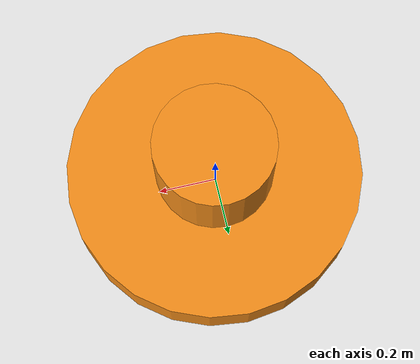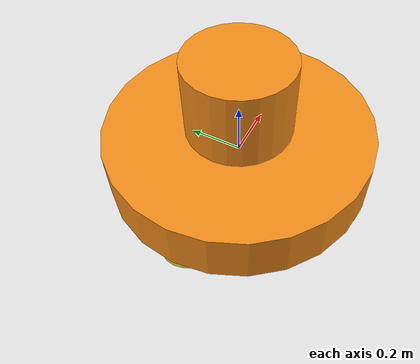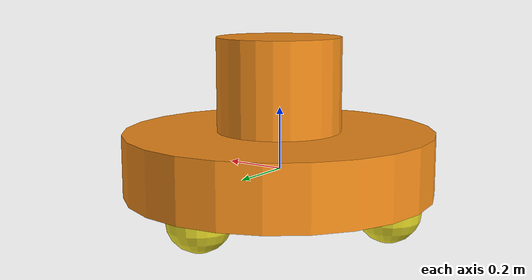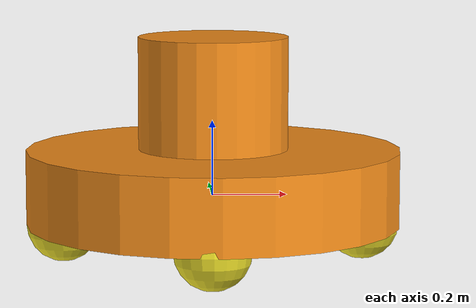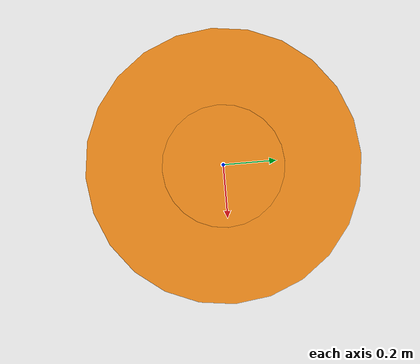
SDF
<?xml version='1.0'?>
<sdf version='1.6'>
  <model name='my_caster'>
    <link name='link_0'>
      <pose frame=''>0.003333 -0 0.025 0 -0 0</pose>
      <inertial>
        <mass>1</mass>
        <inertia>
          <ixx>0.145833</ixx>
          <ixy>0</ixy>
          <ixz>0</ixz>
          <iyy>0.145833</iyy>
          <iyz>0</iyz>
          <izz>0.125</izz>
        </inertia>
        <pose frame=''>0 0 0 0 -0 0</pose>
      </inertial>
      <gravity>1</gravity>
      <self_collide>0</self_collide>
      <kinematic>0</kinematic>
      <visual name='visual'>
        <pose frame=''>0 0 0 0 -0 0</pose>
        <geometry>
          <cylinder>
            <radius>0.5</radius>
            <length>0.2</length>
          </cylinder>
        </geometry>
        <material>
          <lighting>1</lighting>
          <script>
            <uri>file://media/materials/scripts/gazebo.material</uri>
            <name>Gazebo/Orange</name>
          </script>
          <shader type='pixel'>
            <normal_map>__default__</normal_map>
          </shader>
          <ambient>1 0.5088 0.0468 1</ambient>
          <diffuse>1 0.5088 0.0468 1</diffuse>
          <specular>0.5 0.5 0.5 128</specular>
          <emissive>0 0 0 1</emissive>
        </material>
        <transparency>0</transparency>
        <cast_shadows>1</cast_shadows>
      </visual>
      <collision name='collision'>
        <laser_retro>0</laser_retro>
        <max_contacts>10</max_contacts>
        <pose frame=''>0 0 0 0 -0 0</pose>
        <geometry>
          <cylinder>
            <radius>0.5</radius>
            <length>0.2</length>
          </cylinder>
        </geometry>
        <surface>
          <friction>
            <ode>
              <mu>1</mu>
              <mu2>1</mu2>
              <fdir1>0 0 0</fdir1>
              <slip1>0</slip1>
              <slip2>0</slip2>
            </ode>
            <torsional>
              <coefficient>1</coefficient>
              <patch_radius>0</patch_radius>
              <surface_radius>0</surface_radius>
              <use_patch_radius>1</use_patch_radius>
              <ode>
                <slip>0</slip>
              </ode>
            </torsional>
          </friction>
          <bounce>
            <restitution_coefficient>0</restitution_coefficient>
            <threshold>1e+06</threshold>
          </bounce>
          <contact>
            <collide_without_contact>0</collide_without_contact>
            <collide_without_contact_bitmask>1</collide_without_contact_bitmask>
            <collide_bitmask>1</collide_bitmask>
            <ode>
              <soft_cfm>0</soft_cfm>
              <soft_erp>0.2</soft_erp>
              <kp>1e+13</kp>
              <kd>1</kd>
              <max_vel>0.01</max_vel>
              <min_depth>0</min_depth>
            </ode>
            <bullet>
              <split_impulse>1</split_impulse>
              <split_impulse_penetration_threshold>-0.01</split_impulse_penetration_threshold>
              <soft_cfm>0</soft_cfm>
              <soft_erp>0.2</soft_erp>
              <kp>1e+13</kp>
              <kd>1</kd>
            </bullet>
          </contact>
        </surface>
      </collision>
    </link>
    <link name='link_1'>
      <pose frame=''>-0.016667 -0.4 -0.075 0 -0 0</pose>
      <inertial>
        <mass>1</mass>
        <inertia>
          <ixx>0.1</ixx>
          <ixy>0</ixy>
          <ixz>0</ixz>
          <iyy>0.1</iyy>
          <iyz>0</iyz>
          <izz>0.1</izz>
        </inertia>
        <pose frame=''>0 0 0 0 -0 0</pose>
      </inertial>
      <gravity>1</gravity>
      <self_collide>0</self_collide>
      <kinematic>0</kinematic>
      <visual name='visual'>
        <pose frame=''>0 0 0 0 -0 0</pose>
        <geometry>
          <sphere>
            <radius>0.1</radius>
          </sphere>
        </geometry>
        <material>
          <lighting>1</lighting>
          <script>
            <uri>file://media/materials/scripts/gazebo.material</uri>
            <name>Gazebo/Yellow</name>
          </script>
          <shader type='pixel'>
            <normal_map>__default__</normal_map>
          </shader>
          <ambient>1 1 0 1</ambient>
          <diffuse>1 1 0 1</diffuse>
          <specular>0 0 0 0 0</specular>
          <emissive>0 0 0 1</emissive>
        </material>
        <transparency>0</transparency>
        <cast_shadows>1</cast_shadows>
      </visual>
      <collision name='collision'>
        <laser_retro>0</laser_retro>
        <max_contacts>10</max_contacts>
        <pose frame=''>0 0 0 0 -0 0</pose>
        <geometry>
          <sphere>
            <radius>0.1</radius>
          </sphere>
        </geometry>
        <surface>
          <friction>
            <ode>
              <mu>1</mu>
              <mu2>1</mu2>
              <fdir1>0 0 0</fdir1>
              <slip1>0</slip1>
              <slip2>0</slip2>
            </ode>
            <torsional>
              <coefficient>1</coefficient>
              <patch_radius>0</patch_radius>
              <surface_radius>0</surface_radius>
              <use_patch_radius>1</use_patch_radius>
              <ode>
                <slip>0</slip>
              </ode>
            </torsional>
          </friction>
          <bounce>
            <restitution_coefficient>0</restitution_coefficient>
            <threshold>1e+06</threshold>
          </bounce>
          <contact>
            <collide_without_contact>0</collide_without_contact>
            <collide_without_contact_bitmask>1</collide_without_contact_bitmask>
            <collide_bitmask>1</collide_bitmask>
            <ode>
              <soft_cfm>0</soft_cfm>
              <soft_erp>0.2</soft_erp>
              <kp>1e+13</kp>
              <kd>1</kd>
              <max_vel>0.01</max_vel>
              <min_depth>0</min_depth>
            </ode>
            <bullet>
              <split_impulse>1</split_impulse>
              <split_impulse_penetration_threshold>-0.01</split_impulse_penetration_threshold>
              <soft_cfm>0</soft_cfm>
              <soft_erp>0.2</soft_erp>
              <kp>1e+13</kp>
              <kd>1</kd>
            </bullet>
          </contact>
        </surface>
      </collision>
    </link>
    <link name='link_1_clone'>
      <pose frame=''>0.003333 0.4 -0.075 0 -0 0</pose>
      <inertial>
        <mass>1</mass>
        <inertia>
          <ixx>0.1</ixx>
          <ixy>0</ixy>
          <ixz>0</ixz>
          <iyy>0.1</iyy>
          <iyz>0</iyz>
          <izz>0.1</izz>
        </inertia>
        <pose frame=''>0 0 0 0 -0 0</pose>
      </inertial>
      <self_collide>0</self_collide>
      <kinematic>0</kinematic>
      <visual name='visual'>
        <pose frame=''>0 0 0 0 -0 0</pose>
        <geometry>
          <sphere>
            <radius>0.1</radius>
          </sphere>
        </geometry>
        <material>
          <lighting>1</lighting>
          <script>
            <uri>file://media/materials/scripts/gazebo.material</uri>
            <name>Gazebo/Yellow</name>
          </script>
          <shader type='pixel'>
            <normal_map>__default__</normal_map>
          </shader>
          <ambient>1 1 0 1</ambient>
          <diffuse>1 1 0 1</diffuse>
          <specular>0 0 0 0 0</specular>
          <emissive>0 0 0 1</emissive>
        </material>
        <transparency>0</transparency>
        <cast_shadows>1</cast_shadows>
      </visual>
      <collision name='collision'>
        <laser_retro>0</laser_retro>
        <max_contacts>10</max_contacts>
        <pose frame=''>0 0 0 0 -0 0</pose>
        <geometry>
          <sphere>
            <radius>0.1</radius>
          </sphere>
        </geometry>
        <surface>
          <friction>
            <ode>
              <mu>1</mu>
              <mu2>1</mu2>
              <fdir1>0 0 0</fdir1>
              <slip1>0</slip1>
              <slip2>0</slip2>
            </ode>
            <torsional>
              <coefficient>1</coefficient>
              <patch_radius>0</patch_radius>
              <surface_radius>0</surface_radius>
              <use_patch_radius>1</use_patch_radius>
              <ode>
                <slip>0</slip>
              </ode>
            </torsional>
          </friction>
          <bounce>
            <restitution_coefficient>0</restitution_coefficient>
            <threshold>1e+06</threshold>
          </bounce>
          <contact>
            <collide_without_contact>0</collide_without_contact>
            <collide_without_contact_bitmask>1</collide_without_contact_bitmask>
            <collide_bitmask>1</collide_bitmask>
            <ode>
              <soft_cfm>0</soft_cfm>
              <soft_erp>0.2</soft_erp>
              <kp>1e+13</kp>
              <kd>1</kd>
              <max_vel>0.01</max_vel>
              <min_depth>0</min_depth>
            </ode>
            <bullet>
              <split_impulse>1</split_impulse>
              <split_impulse_penetration_threshold>-0.01</split_impulse_penetration_threshold>
              <soft_cfm>0</soft_cfm>
              <soft_erp>0.2</soft_erp>
              <kp>1e+13</kp>
              <kd>1</kd>
            </bullet>
          </contact>
        </surface>
      </collision>
    </link>
    <link name='link_1_clone_0'>
      <pose frame=''>0.403333 -0 -0.075 0 -0 0</pose>
      <inertial>
        <mass>1</mass>
        <inertia>
          <ixx>0.1</ixx>
          <ixy>0</ixy>
          <ixz>0</ixz>
          <iyy>0.1</iyy>
          <iyz>0</iyz>
          <izz>0.1</izz>
        </inertia>
        <pose frame=''>0 0 0 0 -0 0</pose>
      </inertial>
      <self_collide>0</self_collide>
      <kinematic>0</kinematic>
      <visual name='visual'>
        <pose frame=''>0 0 0 0 -0 0</pose>
        <geometry>
          <sphere>
            <radius>0.1</radius>
          </sphere>
        </geometry>
        <material>
          <lighting>1</lighting>
          <script>
            <uri>file://media/materials/scripts/gazebo.material</uri>
            <name>Gazebo/Yellow</name>
          </script>
          <shader type='pixel'>
            <normal_map>__default__</normal_map>
          </shader>
          <ambient>1 1 0 1</ambient>
          <diffuse>1 1 0 1</diffuse>
          <specular>0 0 0 0 0</specular>
          <emissive>0 0 0 1</emissive>
        </material>
        <transparency>0</transparency>
        <cast_shadows>1</cast_shadows>
      </visual>
      <collision name='collision'>
        <laser_retro>0</laser_retro>
        <max_contacts>10</max_contacts>
        <pose frame=''>0 0 0 0 -0 0</pose>
        <geometry>
          <sphere>
            <radius>0.1</radius>
          </sphere>
        </geometry>
        <surface>
          <friction>
            <ode>
              <mu>1</mu>
              <mu2>1</mu2>
              <fdir1>0 0 0</fdir1>
              <slip1>0</slip1>
              <slip2>0</slip2>
            </ode>
            <torsional>
              <coefficient>1</coefficient>
              <patch_radius>0</patch_radius>
              <surface_radius>0</surface_radius>
              <use_patch_radius>1</use_patch_radius>
              <ode>
                <slip>0</slip>
              </ode>
            </torsional>
          </friction>
          <bounce>
            <restitution_coefficient>0</restitution_coefficient>
            <threshold>1e+06</threshold>
          </bounce>
          <contact>
            <collide_without_contact>0</collide_without_contact>
            <collide_without_contact_bitmask>1</collide_without_contact_bitmask>
            <collide_bitmask>1</collide_bitmask>
            <ode>
              <soft_cfm>0</soft_cfm>
              <soft_erp>0.2</soft_erp>
              <kp>1e+13</kp>
              <kd>1</kd>
              <max_vel>0.01</max_vel>
              <min_depth>0</min_depth>
            </ode>
            <bullet>
              <split_impulse>1</split_impulse>
              <split_impulse_penetration_threshold>-0.01</split_impulse_penetration_threshold>
              <soft_cfm>0</soft_cfm>
              <soft_erp>0.2</soft_erp>
              <kp>1e+13</kp>
              <kd>1</kd>
            </bullet>
          </contact>
        </surface>
      </collision>
    </link>
    <link name='link_1_clone_1'>
      <pose frame=''>-0.396667 -0 -0.075 0 -0 0</pose>
      <inertial>
        <mass>1</mass>
        <inertia>
          <ixx>0.1</ixx>
          <ixy>0</ixy>
          <ixz>0</ixz>
          <iyy>0.1</iyy>
          <iyz>0</iyz>
          <izz>0.1</izz>
        </inertia>
        <pose frame=''>0 0 0 0 -0 0</pose>
      </inertial>
      <self_collide>0</self_collide>
      <kinematic>0</kinematic>
      <visual name='visual'>
        <pose frame=''>0 0 0 0 -0 0</pose>
        <geometry>
          <sphere>
            <radius>0.1</radius>
          </sphere>
        </geometry>
        <material>
          <lighting>1</lighting>
          <script>
            <uri>file://media/materials/scripts/gazebo.material</uri>
            <name>Gazebo/Yellow</name>
          </script>
          <shader type='pixel'>
            <normal_map>__default__</normal_map>
          </shader>
          <ambient>1 1 0 1</ambient>
          <diffuse>1 1 0 1</diffuse>
          <specular>0 0 0 0 0</specular>
          <emissive>0 0 0 1</emissive>
        </material>
        <transparency>0</transparency>
        <cast_shadows>1</cast_shadows>
      </visual>
      <collision name='collision'>
        <laser_retro>0</laser_retro>
        <max_contacts>10</max_contacts>
        <pose frame=''>0 0 0 0 -0 0</pose>
        <geometry>
          <sphere>
            <radius>0.1</radius>
          </sphere>
        </geometry>
        <surface>
          <friction>
            <ode>
              <mu>1</mu>
              <mu2>1</mu2>
              <fdir1>0 0 0</fdir1>
              <slip1>0</slip1>
              <slip2>0</slip2>
            </ode>
            <torsional>
              <coefficient>1</coefficient>
              <patch_radius>0</patch_radius>
              <surface_radius>0</surface_radius>
              <use_patch_radius>1</use_patch_radius>
              <ode>
                <slip>0</slip>
              </ode>
            </torsional>
          </friction>
          <bounce>
            <restitution_coefficient>0</restitution_coefficient>
            <threshold>1e+06</threshold>
          </bounce>
          <contact>
            <collide_without_contact>0</collide_without_contact>
            <collide_without_contact_bitmask>1</collide_without_contact_bitmask>
            <collide_bitmask>1</collide_bitmask>
            <ode>
              <soft_cfm>0</soft_cfm>
              <soft_erp>0.2</soft_erp>
              <kp>1e+13</kp>
              <kd>1</kd>
              <max_vel>0.01</max_vel>
              <min_depth>0</min_depth>
            </ode>
            <bullet>
              <split_impulse>1</split_impulse>
              <split_impulse_penetration_threshold>-0.01</split_impulse_penetration_threshold>
              <soft_cfm>0</soft_cfm>
              <soft_erp>0.2</soft_erp>
              <kp>1e+13</kp>
              <kd>1</kd>
            </bullet>
          </contact>
        </surface>
      </collision>
    </link>
    <link name='link_2'>
      <pose frame=''>0.003333 -0 0.275 0 -0 0</pose>
      <inertial>
        <mass>1</mass>
        <inertia>
          <ixx>0.145833</ixx>
          <ixy>0</ixy>
          <ixz>0</ixz>
          <iyy>0.145833</iyy>
          <iyz>0</iyz>
          <izz>0.125</izz>
        </inertia>
        <pose frame=''>0 0 0 0 -0 0</pose>
      </inertial>
      <gravity>1</gravity>
      <self_collide>0</self_collide>
      <kinematic>0</kinematic>
      <visual name='visual'>
        <pose frame=''>0 0 0 0 -0 0</pose>
        <geometry>
          <cylinder>
            <radius>0.2</radius>
            <length>0.3</length>
          </cylinder>
        </geometry>
        <material>
          <lighting>1</lighting>
          <script>
            <uri>file://media/materials/scripts/gazebo.material</uri>
            <name>Gazebo/Orange</name>
          </script>
          <shader type='pixel'>
            <normal_map>__default__</normal_map>
          </shader>
          <ambient>1 0.5088 0.0468 1</ambient>
          <diffuse>1 0.5088 0.0468 1</diffuse>
          <specular>0.5 0.5 0.5 128</specular>
          <emissive>0 0 0 1</emissive>
        </material>
        <transparency>0</transparency>
        <cast_shadows>1</cast_shadows>
      </visual>
      <collision name='collision'>
        <laser_retro>0</laser_retro>
        <max_contacts>10</max_contacts>
        <pose frame=''>0 0 0 0 -0 0</pose>
        <geometry>
          <cylinder>
            <radius>0.2</radius>
            <length>0.3</length>
          </cylinder>
        </geometry>
        <surface>
          <friction>
            <ode>
              <mu>1</mu>
              <mu2>1</mu2>
              <fdir1>0 0 0</fdir1>
              <slip1>0</slip1>
              <slip2>0</slip2>
            </ode>
            <torsional>
              <coefficient>1</coefficient>
              <patch_radius>0</patch_radius>
              <surface_radius>0</surface_radius>
              <use_patch_radius>1</use_patch_radius>
              <ode>
                <slip>0</slip>
              </ode>
            </torsional>
          </friction>
          <bounce>
            <restitution_coefficient>0</restitution_coefficient>
            <threshold>1e+06</threshold>
          </bounce>
          <contact>
            <collide_without_contact>0</collide_without_contact>
            <collide_without_contact_bitmask>1</collide_without_contact_bitmask>
            <collide_bitmask>1</collide_bitmask>
            <ode>
              <soft_cfm>0</soft_cfm>
              <soft_erp>0.2</soft_erp>
              <kp>1e+13</kp>
              <kd>1</kd>
              <max_vel>0.01</max_vel>
              <min_depth>0</min_depth>
            </ode>
            <bullet>
              <split_impulse>1</split_impulse>
              <split_impulse_penetration_threshold>-0.01</split_impulse_penetration_threshold>
              <soft_cfm>0</soft_cfm>
              <soft_erp>0.2</soft_erp>
              <kp>1e+13</kp>
              <kd>1</kd>
            </bullet>
          </contact>
        </surface>
      </collision>
    </link>
    <joint name='link_0_JOINT_1' type='revolute'>
      <parent>link_0</parent>
      <child>link_1</child>
      <pose frame=''>0 0 0 0 -0 0</pose>
      <axis>
        <xyz>0 0 1</xyz>
        <use_parent_model_frame>0</use_parent_model_frame>
        <limit>
          <lower>-1.79769e+308</lower>
          <upper>1.79769e+308</upper>
          <effort>-1</effort>
          <velocity>-1</velocity>
        </limit>
        <dynamics>
          <spring_reference>0</spring_reference>
          <spring_stiffness>0</spring_stiffness>
          <damping>0</damping>
        </dynamics>
      </axis>
      <physics>
        <ode>
          <limit>
            <cfm>0</cfm>
            <erp>0.2</erp>
          </limit>
          <suspension>
            <cfm>0</cfm>
            <erp>0.2</erp>
          </suspension>
        </ode>
      </physics>
    </joint>
    <joint name='link_0_JOINT_2' type='revolute'>
      <parent>link_0</parent>
      <child>link_1_clone</child>
      <pose frame=''>0 0 0 0 -0 0</pose>
      <axis>
        <xyz>0 0 1</xyz>
        <use_parent_model_frame>0</use_parent_model_frame>
        <limit>
          <lower>-1.79769e+308</lower>
          <upper>1.79769e+308</upper>
          <effort>-1</effort>
          <velocity>-1</velocity>
        </limit>
        <dynamics>
          <spring_reference>0</spring_reference>
          <spring_stiffness>0</spring_stiffness>
          <damping>0</damping>
        </dynamics>
      </axis>
      <physics>
        <ode>
          <limit>
            <cfm>0</cfm>
            <erp>0.2</erp>
          </limit>
          <suspension>
            <cfm>0</cfm>
            <erp>0.2</erp>
          </suspension>
        </ode>
      </physics>
    </joint>
    <joint name='link_0_JOINT_3' type='revolute'>
      <parent>link_0</parent>
      <child>link_1_clone_0</child>
      <pose frame=''>0 0 0 0 -0 0</pose>
      <axis>
        <xyz>1 0 0</xyz>
        <use_parent_model_frame>0</use_parent_model_frame>
        <limit>
          <lower>-1.79769e+308</lower>
          <upper>1.79769e+308</upper>
          <effort>-1</effort>
          <velocity>-1</velocity>
        </limit>
        <dynamics>
          <spring_reference>0</spring_reference>
          <spring_stiffness>0</spring_stiffness>
          <damping>0</damping>
        </dynamics>
      </axis>
      <physics>
        <ode>
          <limit>
            <cfm>0</cfm>
            <erp>0.2</erp>
          </limit>
          <suspension>
            <cfm>0</cfm>
            <erp>0.2</erp>
          </suspension>
        </ode>
      </physics>
    </joint>
    <joint name='link_0_JOINT_4' type='revolute'>
      <parent>link_0</parent>
      <child>link_1_clone_1</child>
      <pose frame=''>0 0 0 0 -0 0</pose>
      <axis>
        <xyz>0 0 1</xyz>
        <use_parent_model_frame>0</use_parent_model_frame>
        <limit>
          <lower>-1.79769e+308</lower>
          <upper>1.79769e+308</upper>
          <effort>-1</effort>
          <velocity>-1</velocity>
        </limit>
        <dynamics>
          <spring_reference>0</spring_reference>
          <spring_stiffness>0</spring_stiffness>
          <damping>0</damping>
        </dynamics>
      </axis>
      <physics>
        <ode>
          <limit>
            <cfm>0</cfm>
            <erp>0.2</erp>
          </limit>
          <suspension>
            <cfm>0</cfm>
            <erp>0.2</erp>
          </suspension>
        </ode>
      </physics>
    </joint>
    <joint name='link_0_JOINT_6' type='revolute'>
      <parent>link_0</parent>
      <child>link_2</child>
      <pose frame=''>0 0 0 0 -0 0</pose>
      <axis>
        <xyz>0 0 1</xyz>
        <use_parent_model_frame>0</use_parent_model_frame>
        <limit>
          <lower>-1.79769e+308</lower>
          <upper>1.79769e+308</upper>
          <effort>-1</effort>
          <velocity>-1</velocity>
        </limit>
        <dynamics>
          <spring_reference>0</spring_reference>
          <spring_stiffness>0</spring_stiffness>
          <damping>0</damping>
        </dynamics>
      </axis>
      <physics>
        <ode>
          <limit>
            <cfm>0</cfm>
            <erp>0.2</erp>
          </limit>
          <suspension>
            <cfm>0</cfm>
            <erp>0.2</erp>
          </suspension>
        </ode>
      </physics>
    </joint>
    <static>0</static>
    <allow_auto_disable>1</allow_auto_disable>
  </model>
</sdf>
